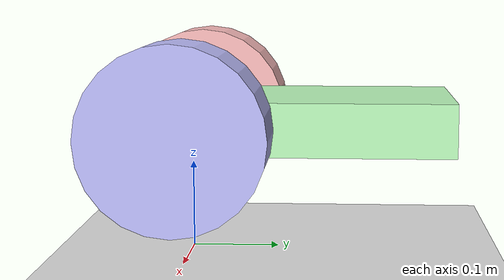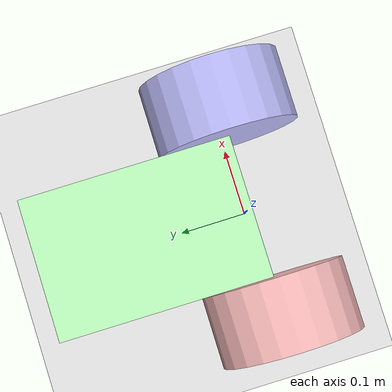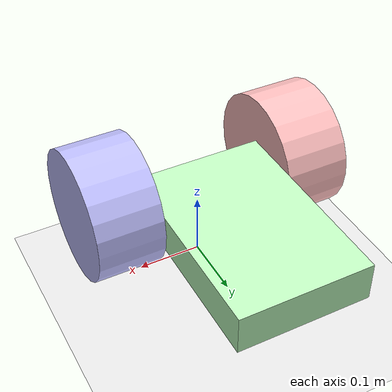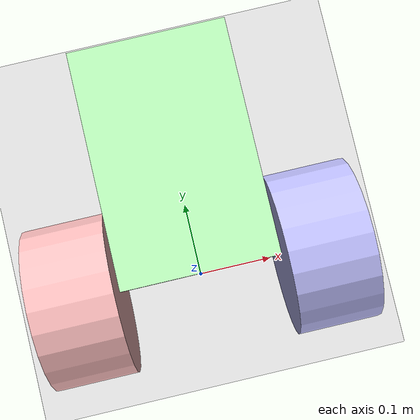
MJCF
<mujoco>
	<option gravity="0 0 -9" viscosity="0.1" wind="0 0 0" />
  <worldbody>
    <light diffuse=".5 .5 .5" pos="0 0 7" dir="0 0 -1"/>
    <geom type="plane" size="1 1 0.1" rgba=".9 0.9 0.9 1"/>
    <body name="roller" pos="0 0 0.15">
      <freejoint/>
      <geom type="box" size="0.1 0.15 0.03" mass="0.5" rgba="0.75 1 0.75 1.0"
            pos="0 0.15 0"/>

      <body pos="-0.15 0 0" name="left_wheel">
          <joint type="hinge" name="left_wheel_joint" axis="1 0 0" damping="1.5"/>
          <geom name="left_tyre" type="cylinder" size="0.1 0.05" euler="0 90 0" mass="0.1"
                rgba="1 0.75 0.75 1.0"/>
      </body>

      <body pos="0.15 0 0" name="right_wheel">
          <joint type="hinge" name="right_wheel_joint" axis="1 0 0" damping="1.5"/>
          <geom name="right_tyre" type="cylinder" size="0.1 0.05" euler="0 90 0" mass="0.1" rgba="0.75 0.75 1.0 1.0"/>
      </body>

    </body>
  </worldbody>
  <actuator>
    <velocity name="left_motor" joint="left_wheel_joint" ctrllimited="true" ctrlrange="-5 5" />
    <velocity name="right_motor" joint="right_wheel_joint" ctrllimited="true" ctrlrange="-5 5" />
  </actuator>
</mujoco>
